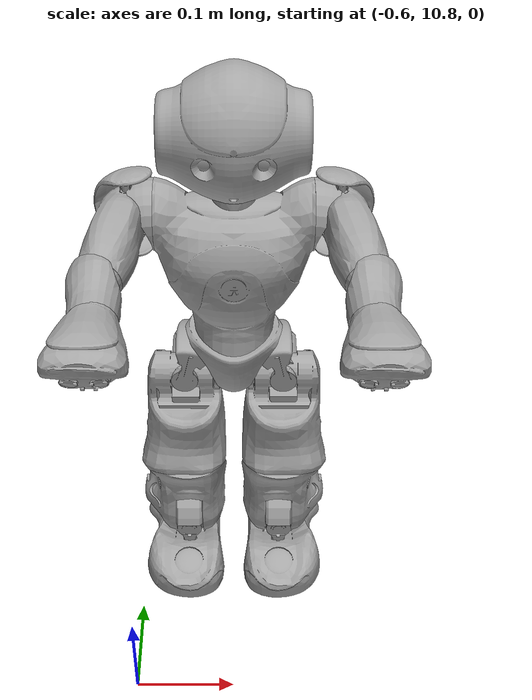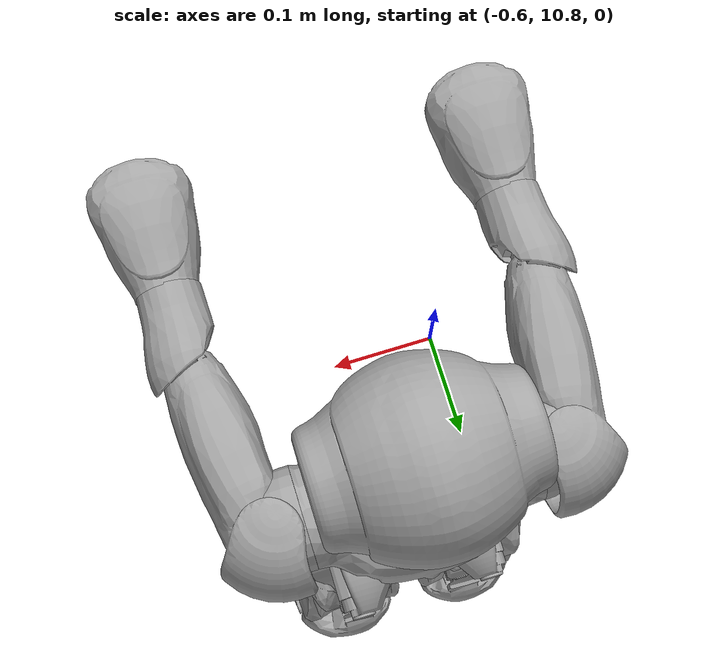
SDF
<sdf version="1.4">
  <model name="teamA_1">

    <!-- A robot-->
    <pose>-0.5 11 0 0 0 -1.57</pose>
    <include>
      <uri>model://nao_meshes</uri>
    </include>

    <!-- Joint used to lock the model to the world when needed -->

    <plugin name="agent_plugin" filename="librobocup_agent_plugin.so">
      <robot_namespace>teamA_1</robot_namespace>
	    <view_angle>120</view_angle>
      <head_link>Nao::HeadPitchLink</head_link>
      <imu_sensor>Nao::base_link::imu_sensor</imu_sensor>
      <force_sensor>Nao::RAnkleRollLink::right_foot_contact</force_sensor>
      <force_sensor>Nao::LAnkleRollLink::left_foot_contact</force_sensor>
    </plugin>

  </model>
</sdf>
